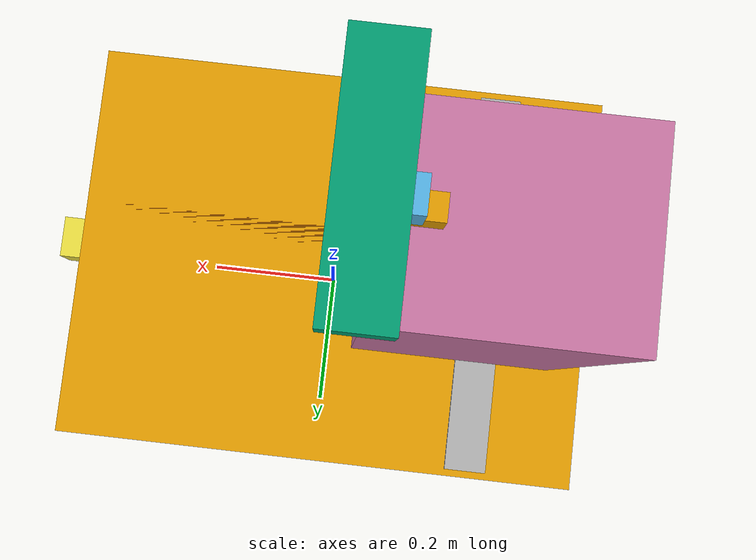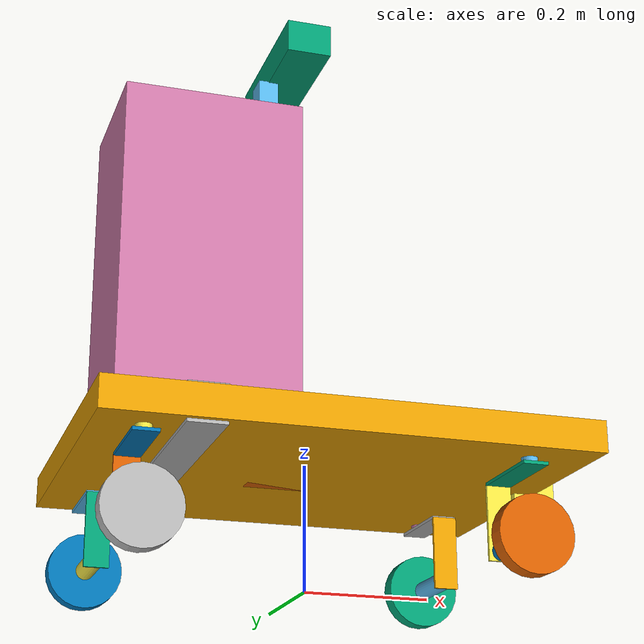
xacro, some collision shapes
<robot name="Rose20" xmlns:xacro="http://www.ros.org/wiki/xacro">

  <xacro:include filename="$(find rose20_description)/common.xacro" />
  <xacro:include filename="$(find rose20_description)/wheel_unit_60mm/wheel_unit_60mm_macro.xacro" />

  <xacro:property name="base_size_x" value="0.76" />
  <xacro:property name="base_size_y" value="0.58" />
  <xacro:property name="base_size_z" value="0.05" />
  <xacro:property name="base_pose_x" value="0.0" />
  <xacro:property name="base_pose_y" value="0.0" />
  <xacro:property name="base_pose_z" value="0.20" />

  <xacro:property name="wheel_front_x"    value="0.28" />
  <xacro:property name="wheel_back_x"     value="-0.305" />
  <xacro:property name="wheelbase_width"  value="0.23" />

  <xacro:property name="liftmid_size_x" value="0.41" />
  <xacro:property name="liftmid_size_y" value="0.115" />
  <xacro:property name="liftmid_size_z" value="0.05" />
  <xacro:property name="liftmid_pose_x" value="-0.205" />
  <xacro:property name="liftmid_pose_y" value="0.0" />
  <xacro:property name="liftmid_pose_z" value="0.0" />

  <xacro:property name="liftsides_size_x" value="0.41" />
  <xacro:property name="liftsides_size_y" value="0.09" />
  <xacro:property name="liftsides_size_z" value="0.05" />
  <xacro:property name="liftsides_pose_x" value="-0.345" />
  <xacro:property name="liftsides_pose_y" value="0.24" />
  <xacro:property name="liftsides_pose_z" value="0.0"/>

  <xacro:property name="lifttopbar_size_x" value="0.06" />
  <xacro:property name="lifttopbar_size_y" value="0.56" />
  <xacro:property name="lifttopbar_size_z" value="0.06" />
  <xacro:property name="lifttopbar_pose_x" value="-0.06" />
  <xacro:property name="lifttopbar_pose_y" value="0.0" />
  <xacro:property name="lifttopbar_pose_z" value="0.55"/>

  <xacro:property name="lifttopbox_size_x" value="0.29" />
  <xacro:property name="lifttopbox_size_y" value="0.24" />
  <xacro:property name="lifttopbox_size_z" value="0.57" />
  <xacro:property name="lifttopbox_pose_x" value="0.0" />
  <xacro:property name="lifttopbox_pose_y" value="0.0" />
  <xacro:property name="lifttopbox_pose_z" value="0.285"/>

  <xacro:property name="lift_rpy" value="0 0 0"/>

  <xacro:property name="neck_pan_size_x" value="0.05" />
  <xacro:property name="neck_pan_size_y" value="0.03" />
  <xacro:property name="neck_pan_size_z" value="0.04" />
  <xacro:property name="neck_pan_pose_x" value="0.015" />
  <xacro:property name="neck_pan_pose_y" value="0.00" />
  <xacro:property name="neck_pan_pose_z" value="0.00" />

  <xacro:property name="neck_tilt_size_x" value="0.033" />
  <xacro:property name="neck_tilt_size_y" value="0.04" />
  <xacro:property name="neck_tilt_size_z" value="0.055" />
  <xacro:property name="neck_tilt_pose_x" value="0.00" />
  <xacro:property name="neck_tilt_pose_y" value="0.00" />
  <xacro:property name="neck_tilt_pose_z" value="0.05" />

  <xacro:property name="kinect_size_x" value="0.073" />
  <xacro:property name="kinect_size_y" value="0.270" />
  <xacro:property name="kinect_size_z" value="0.055" />
  <xacro:property name="kinect_pose_x" value="0.037" />
  <xacro:property name="kinect_pose_y" value="0.00" />
  <xacro:property name="kinect_pose_z" value="0.045" />

  <xacro:property name="hokuyo_size_x" value="0.07" />
  <xacro:property name="hokuyo_size_y" value="0.06" />
  <xacro:property name="hokuyo_size_z" value="0.06" />
  <xacro:property name="hokuyo_pose_x" value="0.00" />
  <xacro:property name="hokuyo_pose_y" value="0.00" />
  <xacro:property name="hokuyo_pose_z" value="0.00" />

  <gazebo>
    <static>false</static>
  </gazebo>

  <link name='base'>
    <xacro:default_box  xyz=  "${base_pose_x} ${base_pose_y} ${base_pose_z}"
                        rpy=  "0 0 0"
                        size= "${base_size_x} ${base_size_y} ${base_size_z}"/>
    <xacro:default_inertial mass="30.0"/>
  </link>

  <!-- Wheel units -->
  <xacro:wheel_unit_60mm name="wheel_FL" parent="base" xyz="${wheel_front_x} ${-wheelbase_width} ${base_pose_z - base_size_z/2}" rpy="0 0 ${-pi/2}"/>
  <xacro:wheel_unit_60mm name="wheel_FR" parent="base" xyz="${wheel_front_x} ${wheelbase_width}  ${base_pose_z - base_size_z/2}" rpy="0 0 ${pi/2}"/>
  <xacro:wheel_unit_60mm name="wheel_BL" parent="base" xyz="${wheel_back_x}  ${-wheelbase_width} ${base_pose_z - base_size_z/2}" rpy="0 0 ${-pi/2}"/>
  <xacro:wheel_unit_60mm name="wheel_BR" parent="base" xyz="${wheel_back_x}  ${wheelbase_width}  ${base_pose_z - base_size_z/2}" rpy="0 0 ${pi/2}"/>

  <!-- joint between base and lift_mid -->
  <joint name="lift_mid_bottom_joint" type="revolute">
    <parent link="base"/>
    <child link="lift_mid"/>
    <axis xyz="0 1 0" />
    <origin xyz="${base_size_x/2 - 0.055} 0 ${base_pose_z}" rpy="0 0 0"/>
    <dynamics damping="1.0" friction="1.0"/>
    <limit effort="10.0" lower="0.0" upper="${pi/2}" velocity="1.0"/>
  </joint>

  <!-- Lift mid-->
  <link name='lift_mid'>
    <xacro:default_box  xyz=  "${liftmid_pose_x} ${liftmid_pose_y} ${liftmid_pose_z}"
                        rpy=  "${lift_rpy}"
                        size= "${liftmid_size_x} ${liftmid_size_y} ${liftmid_size_z}"/>
    <xacro:default_inertial mass="0.5"/>
  </link>

  <!-- joint between base and lift_left -->

  <!-- lift left -->

  <!-- joint between base and lift_right -->

  <!-- lift right -->

  <!-- macro for joining the lift bars to the top of rose -->
  <xacro:macro name="lift_bar_joint" params="parent">
    <joint name="${parent}_box_joint" type="continuous">
      <parent link="${parent}"/>
      <child link="lift_top_box"/>
      <axis xyz="0 1 0" />
      <origin xyz="${-liftsides_size_x} 0 0" rpy="0 0 0"/>
      <dynamics damping="1.0" friction="1.0"/>
      <limit effort="10.0" lower="0" upper="0" velocity="1.0"/>
    </joint>
  </xacro:macro>

  <!-- lift top box -->
  <link name='lift_top_box'>
    <xacro:default_box  xyz=  "-0.10 0 ${lifttopbox_size_z/2}"
                        rpy=  "0 0 0"
                        size= "${lifttopbox_size_x} ${lifttopbox_size_y} ${lifttopbox_size_z}"/>
    <xacro:default_inertial mass="0.1"/>
  </link>

  <!-- joint between lift_mid and lift_top_box-->
  <xacro:lift_bar_joint parent="lift_mid"/>

  <!-- joint between lift_top_box and lift_top_bar -->
  <joint name="lift_mid_top_joint" type="fixed">
    <parent link="lift_top_box"/>
    <child link="lift_top_bar"/>
    <axis xyz="0 1 0" />
    <origin xyz="-0.14 0 0" rpy="0 0 0"/>
  </joint>

  <!-- lift top bar -->
  <link name='lift_top_bar'>
    <xacro:default_box  xyz=  "0 0 0"
                        rpy=  "0 0 0"
                        size= "${lifttopbar_size_x} ${lifttopbar_size_y} ${lifttopbar_size_z}"/>
    <xacro:default_inertial mass="1.0"/>
  </link>

  <!-- Lift controller plugin -->
  <gazebo>
    <plugin name="LiftController" filename="libLiftController.so">
      <bottom_lift_joint>lift_mid_bottom_joint</bottom_lift_joint>
      <top_lift_joint>lift_mid_box_joint</top_lift_joint>
    </plugin>
  </gazebo>

  <!-- START neck -->

  <!-- joint between lift_top_box and neck_pan -->
  <joint name="neck_fixed_joint" type="fixed">
    <parent link="lift_top_box"/>
    <child link="neck_pan"/>
    <axis xyz="0 1 0" />
    <origin xyz="0 0 ${lifttopbox_size_z}" rpy="0 0 0"/>
  </joint>

  <!-- neck_pan -->
  <link name='neck_pan'>
    <xacro:default_box  xyz=  "0 0 ${neck_pan_size_z/2}"
                        rpy=  "0 0 0"
                        size= "${neck_pan_size_x} ${neck_pan_size_y} ${neck_pan_size_z}"/>
    <xacro:default_inertial mass="0.25"/>
  </link>

  <!-- joint between neck_pan and neck_tilt -->
  <joint name="neck_pan_joint" type="revolute">
    <parent link="neck_pan"/>
    <child link="neck_tilt"/>
    <axis xyz="0 0 1" />
    <origin xyz="${neck_pan_pose_x} 0 ${neck_pan_size_z}" rpy="0 0 0"/>
    <dynamics damping="1.0" friction="1.0"/>
    <limit effort="1.0" lower="-0.7853" upper="0.7853" velocity="10.0"/>
  </joint>

  <!-- neck_tilt -->
  <link name='neck_tilt'>
    <xacro:default_box  xyz=  "0 0 ${neck_tilt_size_z/2}"
                        rpy=  "0 0 0"
                        size= "${neck_tilt_size_x} ${neck_tilt_size_y} ${neck_tilt_size_z}"/>
    <xacro:default_inertial mass="0.25"/>
  </link>

   <!-- joint between neck_tilt and kinect -->
  <joint name="neck_tilt_joint" type="revolute">
    <parent link="neck_tilt"/>
    <child link="kinect"/>
    <axis xyz="0 1 0" />
    <origin xyz="${kinect_pose_x} ${kinect_pose_y} ${kinect_pose_z}" rpy="0 0 0"/>
    <dynamics damping="1.0" friction="1.0"/>
    <limit effort="1.0" lower="-1.5707" upper="1.5707" velocity="1.0"/>
  </joint>

  <!-- END neck -->

  <!-- START kinect -->
  <link name='kinect'>
    <xacro:collission_box   xyz=  "0 0 0.036"
                            rpy=  "0 0 0"
                            size= "${kinect_size_x} ${kinect_size_y} ${kinect_size_z}"/>
    <visual>
      <origin xyz="0 0 0.036" rpy="0 0 0" />
        <geometry>
          <mesh filename="package://rose20/meshes/kinect.dae"/>
        </geometry>
    </visual>
    <xacro:default_inertial mass="0.1"/>
  </link>

  <gazebo reference="kinect">
    <sensor type="depth" name="kinect">
      <update_rate>20.0</update_rate>
      <camera name="head">
        <horizontal_fov>1.047198</horizontal_fov>
        <image>
          <width>640</width>
          <height>480</height>
          <format>R8G8B8</format>
        </image>
        <clip>
          <near>0.050000</near>
          <far>3.000000</far>
        </clip>
      </camera>
      <plugin name="kinect_controller" filename="libgazebo_ros_openni_kinect.so">
        <alwaysOn>true</alwaysOn>
        <updateRate>20.0</updateRate>
        <pointCloudCutoff>0.001</pointCloudCutoff>
        <imageTopicName>/camera/rgb/image_raw</imageTopicName>
        <pointCloudTopicName>/camera/depth/points</pointCloudTopicName>
        <cameraInfoTopicName>/camera/camera_info</cameraInfoTopicName>
        <depthImageTopicName>/camera/depth/image_raw</depthImageTopicName>
        <depthImageInfoTopicName>/camera/depth/camera_info</depthImageInfoTopicName>
        <depthImageCameraInfoTopicName>/camera/depth/camera_info</depthImageCameraInfoTopicName>
        <cameraName>kinect_sensor</cameraName>
        <frameName>kinect</frameName>
        <distortion_k1>0.00000001</distortion_k1>
        <distortion_k2>0.00000001</distortion_k2>
        <distortion_k3>0.00000001</distortion_k3>
        <distortion_t1>0.00000001</distortion_t1>
        <distortion_t2>0.00000001</distortion_t2>
      </plugin>
    </sensor>
  </gazebo>

  <gazebo>
    <plugin name="NeckController" filename="libNeckController.so"/>
  </gazebo>

    <!-- START Hokuyo -->

  <joint name="hokuyo_joint" type="revolute">
    <parent link="base"/>
    <child link="hokuyo"/>
    <axis xyz="0 1 0" />
    <origin xyz="${base_size_x/2} 0 0.175" rpy="0 0 0"/>
    <dynamics damping="0.0" friction="0.0"/>
    <limit effort="0.0" lower="0.0" upper="0.0" velocity="0.0"/>
  </joint>

  <link name="hokuyo">
    <xacro:default_box      xyz=  "0 0 0"
                            rpy=  "0 0 0"
                            size= "${hokuyo_size_x} ${hokuyo_size_y} ${hokuyo_size_z}"/>
    <xacro:default_inertial mass="0.1"/>
  </link>

  <gazebo reference="hokuyo">
    <sensor name="laser" type="gpu_ray">
      <pose>0.05 0 0.0175 0 -0 0</pose>
      <ray>
        <scan>
          <horizontal>
            <samples>1024</samples>
            <resolution>0.36</resolution>
            <min_angle>-1.5707</min_angle>
            <max_angle>1.5707</max_angle>
          </horizontal>
        </scan>
        <range>
          <min>0.06</min>
          <max>4</max>
          <resolution>10</resolution>
        </range>
        <noise>
          <type>gaussian</type>
          <mean>0.0</mean>
          <stddev>0.01</stddev>
        </noise>
      </ray>

      <plugin name="laser_sensor" filename="libgazebo_ros_gpu_laser.so">
        <topicName>/scan</topicName>
        <frameName>laser</frameName>
      </plugin>
      <always_on>1</always_on>
      <update_rate>28</update_rate>
      <visualize>true</visualize>
    </sensor>
  </gazebo>

  <!-- END Hokuyo -->

</robot>

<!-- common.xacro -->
<robot xmlns:xacro="http://ros.org/wiki/xacro">

	<!-- math constants -->
	<xacro:property name="pi" value="3.1415926535897931" />

	<!-- common macros -->
	<xacro:macro name="default_inertial" params="mass">
	   <inertial>
	   		   <origin xyz="0 0 0" rpy="0 0 0"/>
	           <mass value="${mass}" />
	           <inertia ixx="1.0" ixy="0.0" ixz="0.0"
	                    iyy="1.0" iyz="0.0"
	                    izz="1.0" />
	   </inertial>
	</xacro:macro>

	<xacro:macro name="default_box" params="xyz rpy size">
	    <collision>
	      <origin xyz="${xyz}" rpy="${rpy}"/>
	      <geometry>
	        <box size="${size}"/>
	      </geometry>
	    </collision>
	    <visual>
	      <origin xyz="${xyz}" rpy="${rpy}"/>
	      <geometry>
	        <box size="${size}"/>
	      </geometry>
	    </visual>
	</xacro:macro>

	<xacro:macro name="collission_box" params="xyz rpy size">
	    <collision>
	      <origin xyz="${xyz}" rpy="${rpy}"/>
	      <geometry>
	        <box size="${size}"/>
	      </geometry>
	    </collision>
	</xacro:macro>

	<xacro:macro name="default_cylinder" params="xyz rpy radius length">
	    <collision>
	      <origin xyz="${xyz}" rpy="${rpy}"/>
	      <geometry>
	        <cylinder radius="${radius}" length="${length}"/>
	      </geometry>
	    </collision>
	    <visual>
	      <origin xyz="${xyz}" rpy="${rpy}"/>
	      <geometry>
	        <cylinder radius="${radius}" length="${length}"/>
	      </geometry>
	    </visual>
	</xacro:macro>

	<xacro:macro name="hokuyo_lx30_laser_gazebo_v0" params="name ros_topic update_rate min_angle max_angle">
    <gazebo reference="${name}_link">
      <sensor type="ray" name="${name}">
        <always_on>true</always_on>
        <update_rate>${update_rate}</update_rate>
        <pose>0 0 0 0 0 0</pose>
        <visualize>false</visualize>
        <ray>
          <scan>
            <horizontal>
              <samples>640</samples>
              <resolution>1</resolution>
              <min_angle>${min_angle}</min_angle>
              <max_angle>${max_angle}</max_angle>
            </horizontal>
          </scan>
          <range>
            <min>0.08</min>
            <max>10.0</max>
            <resolution>0.01</resolution>
          </range>
        </ray>
        <plugin name="gazebo_ros_${name}_controller" filename="libgazebo_ros_laser.so">
          <gaussianNoise>0.005</gaussianNoise>
          <alwaysOn>true</alwaysOn>
          <updateRate>${update_rate}</updateRate>
          <topicName>${ros_topic}</topicName>
          <frameName>${name}_link</frameName>
          <hokuyoMinIntensity>101</hokuyoMinIntensity>
        </plugin>
      </sensor>
    </gazebo>
  	</xacro:macro>

</robot>

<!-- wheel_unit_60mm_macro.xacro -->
<robot xmlns:xacro="http://ros.org/wiki/xacro">

  <!-- parameters -->
  <xacro:property name="wheel_base_size_x" value="0.12" />
  <xacro:property name="wheel_base_size_y" value="0.09" />
  <xacro:property name="wheel_base_size_z" value="0.04" />
  <xacro:property name="wheel_base_pose_x" value="0.0" />
  <xacro:property name="wheel_base_pose_y" value="0.0" />
  <xacro:property name="wheel_base_pose_z" value="0.190" />
  <xacro:property name="wheel_base_angle" value="2.356" />

  <xacro:property name="wheel_mount_axle_radius" value="0.0125" />
  <xacro:property name="wheel_mount_axle_length" value="0.02" />
  <xacro:property name="wheel_mount_axle_pose_x" value="0.04" />
  <xacro:property name="wheel_mount_axle_pose_y" value="0.0" />
  <xacro:property name="wheel_mount_axle_pose_z" value="0.180" />

  <xacro:property name="wheel_horplate_size_x" value="0.14" />
  <xacro:property name="wheel_horplate_size_y" value="0.04" />
  <xacro:property name="wheel_horplate_size_z" value="0.005" />
  <xacro:property name="wheel_horplate_pose_x" value="-0.01" />
  <xacro:property name="wheel_horplate_pose_y" value="0.0" />
  <xacro:property name="wheel_horplate_pose_z" value="0.16" />

  <xacro:property name="wheel_vertplate_size_x" value="0.005" />
  <xacro:property name="wheel_vertplate_size_y" value="0.04" />
  <xacro:property name="wheel_vertplate_size_z" value="0.12" />
  <xacro:property name="wheel_vertplate_pose_x" value="-0.08" />
  <xacro:property name="wheel_vertplate_pose_y" value="0.0" />
  <xacro:property name="wheel_vertplate_pose_z" value="0.10" />

  <xacro:property name="wheel_axle_radius" value="0.015" />
  <xacro:property name="wheel_axle_length" value="0.10" />
  <xacro:property name="wheel_axle_pose_x" value="-0.03" />
  <xacro:property name="wheel_axle_pose_y" value="0.0" />
  <xacro:property name="wheel_axle_pose_z" value="0.06" />
  <xacro:property name="wheel_axle_pose_r" value="0.0" />
  <xacro:property name="wheel_axle_pose_p" value="1.5707" />
  <xacro:property name="wheel_axle_pose_y" value="0.0" />

  <xacro:property name="wheel_radius" value="0.06" />
  <xacro:property name="wheel_length" value="0.03" />
  <xacro:property name="wheel_pose_x" value="0.03" />
  <xacro:property name="wheel_pose_y" value="0.0" />
  <xacro:property name="wheel_pose_z" value="0.06" />
  <xacro:property name="wheel_pose_r" value="0.0" />
  <xacro:property name="wheel_pose_p" value="0.0" />
  <xacro:property name="wheel_pose_y" value="0.0" />

  <xacro:macro name="wheel_unit_60mm" params="name parent xyz rpy">

	  <!-- joint between parent and wheel_mount_axle -->
	  <joint name="${name}_joint_caster" type="revolute">
	    <parent link="${parent}"/>
	    <child link="${name}_wheel_mount_axle"/>
	    <origin xyz="${xyz}" rpy="${rpy}"/>
	    <axis xyz="0 0 1" />
	    <dynamics damping="1.0" friction="0.0"/>
	    <limit effort="10.0" lower="${-wheel_base_angle}" upper="${wheel_base_angle}" velocity="0.5"/>
	  </joint>

	  <!-- Mount Axle -->
	  <link name="${name}_wheel_mount_axle">
	    <xacro:default_cylinder xyz=  "0 0 0 "
	                            rpy=  "0 0 0"
	                            radius="${wheel_mount_axle_radius}"
	                            length="${wheel_mount_axle_length}"/>
	    <xacro:default_inertial mass="0.5"/>
	  </link>

	  <!-- joint between wheel_mount_axle and wheel_mount_horplate -->
	  <joint name="${name}_joint_wheel_mount_axle" type="fixed">
	    <parent link="${name}_wheel_mount_axle"/>
	    <child link="${name}_wheel_mount_horplate"/>
	    <axis xyz="0 1 0" />
	    <origin xyz="${-wheel_horplate_size_x/2 + wheel_mount_axle_radius + 0.01} 0 ${-wheel_mount_axle_length/2 - wheel_horplate_size_z/2}" rpy="0 0 0"/>
	  </joint>

	  <!-- Horizontal plate -->
	  <link name="${name}_wheel_mount_horplate">
	    <xacro:default_box  xyz=  "0 0 0"
	                        rpy=  "0 0 0"
	                        size= "${wheel_horplate_size_x} ${wheel_horplate_size_y} ${wheel_horplate_size_z}"/>
	    <xacro:default_inertial mass="0.5"/>
	  </link>

	  <!-- joint between wheel_mount_horplate and wheel_mount_vertplate -->
	  <joint name="${name}_joint_wheel_mount_vertplate" type="fixed">
	    <parent link="${name}_wheel_mount_horplate"/>
	    <child link="${name}_wheel_mount_vertplate"/>
	    <axis xyz="0 1 0" />
	    <origin xyz="${-wheel_horplate_size_x/2} 0 ${-wheel_vertplate_size_z/2}" rpy="0 0 0"/>
	  </joint>

	  <!-- Vertical plate -->
	  <link name="${name}_wheel_mount_vertplate">
	    <xacro:default_box  xyz=  "0 0 0"
	                        rpy=  "0 0 0"
	                        size= "${wheel_vertplate_size_x} ${wheel_vertplate_size_y} ${wheel_vertplate_size_z}"/>
	    <xacro:default_inertial mass="0.5"/>
	  </link>

	  <!-- joint between wheel_mount_vertplate and wheel_axle -->
	  <joint name="${name}_joint_wheel_axle" type="fixed">
	    <parent link="${name}_wheel_mount_vertplate"/>
	    <child link="${name}_wheel_axle"/>
	    <axis xyz="0 1 0" />
	    <origin xyz="${wheel_vertplate_size_x/2 + wheel_axle_length/2} 0 ${-wheel_vertplate_size_z/2 + wheel_axle_radius}" rpy="${wheel_axle_pose_r} ${wheel_axle_pose_p} ${wheel_axle_pose_y}"/>
	  </joint>

	  <!-- Wheel Axle -->
	  <link name="${name}_wheel_axle">
	    <xacro:default_cylinder xyz=  "0 0 0"
	                            rpy=  "0 0 0"
	                            radius="${wheel_axle_radius}"
	                            length="${wheel_axle_length}"/>
	    <xacro:default_inertial mass="0.5"/>
	  </link>

	  <!-- joint between wheel_axle and wheel -->
	  <joint name="${name}_joint_wheel" type="continuous">
	    <parent link="${name}_wheel_axle"/>
	    <child link="${name}_wheel"/>
	    <origin xyz="0 0 ${wheel_axle_length/2 + wheel_length/2} " rpy="0 0 0"/> <!-- axles are different -z y -x due to rotated -->
	    <axis xyz="0 0 1" />
	    <dynamics damping="10.0" friction="1.0" />
	  </joint>

	  <!-- Wheel -->
	  <link name="${name}_wheel">
	    <xacro:default_inertial mass="0.5"/>
	    <collision>
	      <origin xyz="0 0 0" rpy="0 0 0"/>
	      <geometry>
	        <cylinder radius="${wheel_radius}" length="${wheel_length}"/>
	      </geometry>
	    </collision>
	    <visual>
	      <origin xyz="0 0 0" rpy="0 0 0"/>
	      <geometry>
	        <cylinder radius="${wheel_radius}" length="${wheel_length}"/>
	      </geometry>
	    </visual>
	  </link>

	  <gazebo reference="${name}_wheel">

	    <mu1>0.850000</mu1>
        <mu2>0.850000</mu2>
        <fdir1>1.000000 1.000000 0.000000</fdir1>

	  </gazebo>

	  <gazebo >
	    <plugin name="${name}_wheel_unit_controller" filename="libWheelUnitController.so">
	      <caster>${name}_joint_caster</caster>
	      <wheel>${name}_joint_wheel</wheel>
	    </plugin>
	  </gazebo>
	</xacro:macro>
</robot>
